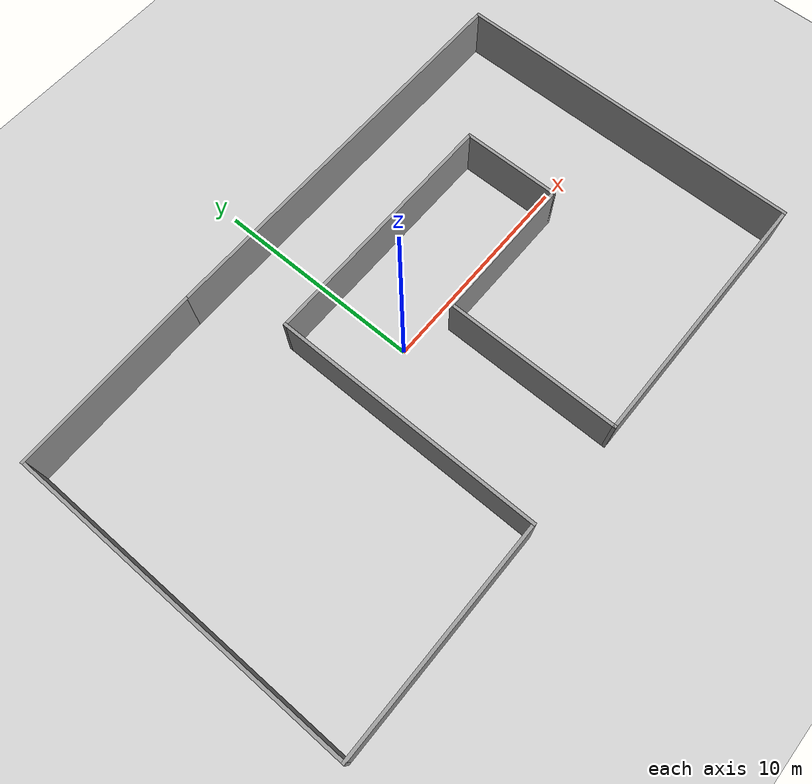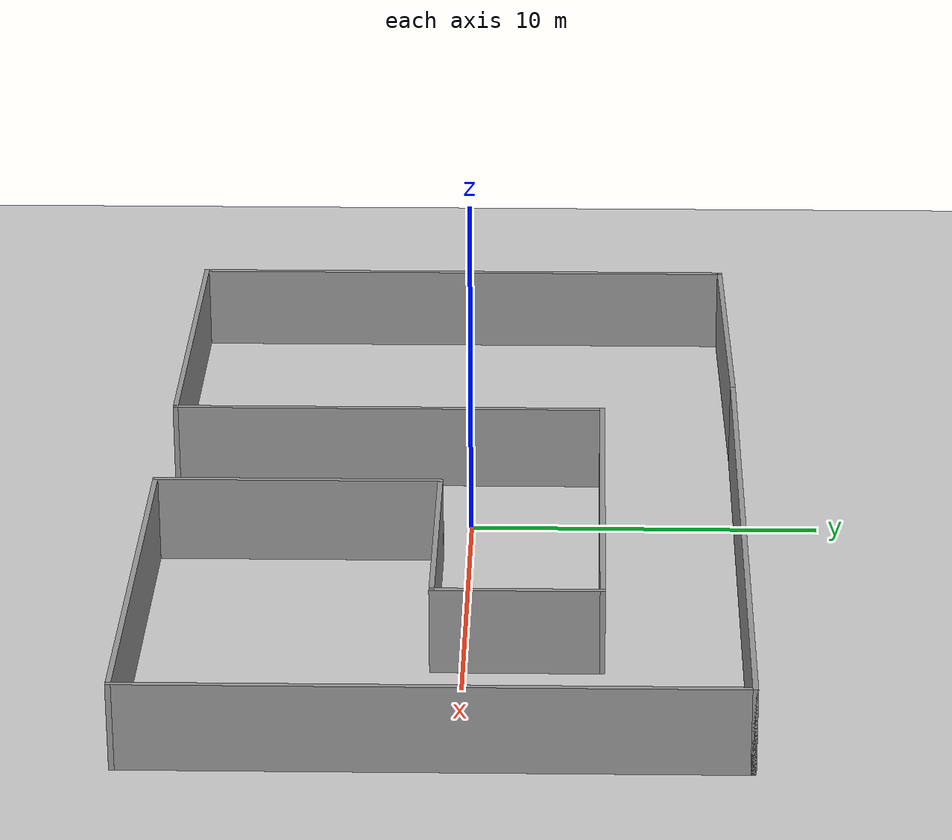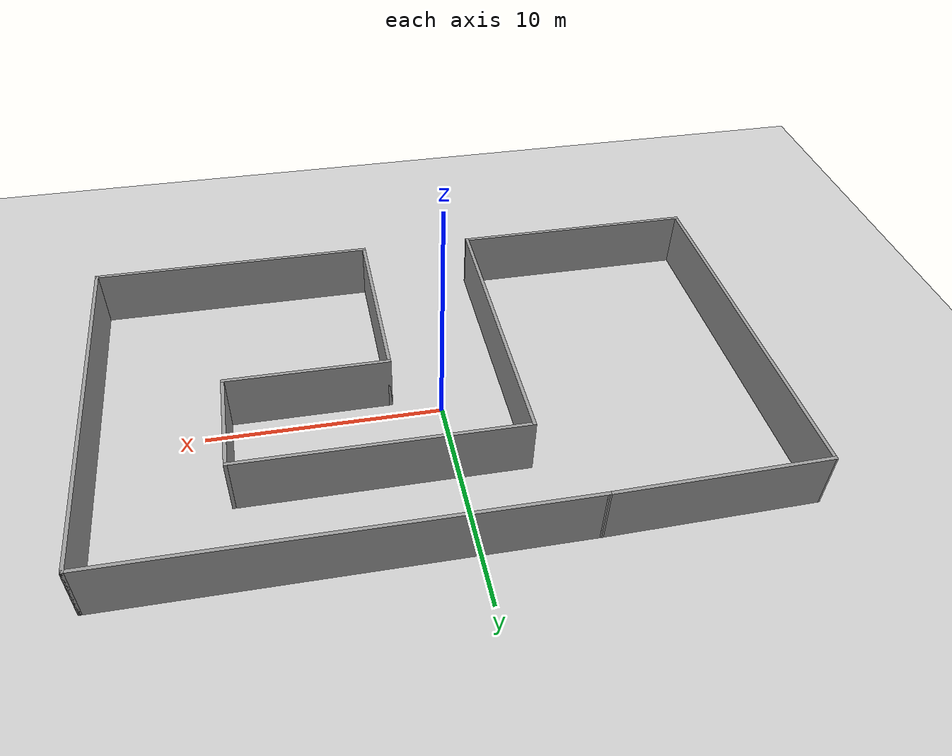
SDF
<sdf version="1.6">
 <world name="default">
  <light name="sun" type="directional">
   <pose>0 0 10 0 -0 0</pose>
   <diffuse>0.8 0.8 0.8 1</diffuse>
   <specular>0.2 0.2 0.2 1</specular>
   <attenuation>
    <range>1000</range>
    <constant>0.9</constant>
    <linear>0.01</linear>
    <quadratic>0.001</quadratic>
   </attenuation>
   <direction>-0.5 0.1 -0.9</direction>
  </light>
  <model name="ground_plane">
   <static>1</static>
   <link name="link">
    <collision name="collision">
     <geometry><plane><normal>0 0 1</normal><size>100 100</size></plane></geometry>
     <surface>
      <contact><collide_bitmask>65535</collide_bitmask></contact>
      <friction><ode><mu>100</mu><mu2>50</mu2></ode></friction>
     </surface>
    </collision>
    <visual name="visual">
     <cast_shadows>0</cast_shadows>
     <geometry><plane><normal>0 0 1</normal><size>100 100</size></plane></geometry>
     <material>
      <script><uri>file://media/materials/scripts/gazebo.material</uri><name>Gazebo/Grey</name></script>
     </material>
    </visual>
   </link>
  </model>
  <gravity>0 0 -9.8</gravity>
  <magnetic_field>6e-06 2.3e-05 -4.2e-05</magnetic_field>
  <atmosphere type="adiabatic"/>
  <physics name="default_physics" default="0" type="ode">
   <max_step_size>0.001</max_step_size>
   <real_time_factor>1</real_time_factor>
   <real_time_update_rate>1000</real_time_update_rate>
  </physics>
  <scene><ambient>0.4 0.4 0.4 1</ambient><background>0.7 0.7 0.7 1</background><shadows>1</shadows></scene>
  <audio><device>default</device></audio>
  <spherical_coordinates>
   <surface_model>EARTH_WGS84</surface_model>
   <latitude_deg>0</latitude_deg>
   <longitude_deg>0</longitude_deg>
   <elevation>0</elevation>
   <heading_deg>0</heading_deg>
  </spherical_coordinates>
  <model name="closedRoom">
   <pose>0.459277 -0.628841 0 0 -0 0</pose>
   <link name="Wall_10">
    <collision name="Wall_10_Collision">
     <geometry><box><size>4.75 0.15 2.5</size></box></geometry>
     <pose>0 0 1.25 0 -0 0</pose>
    </collision>
    <visual name="Wall_10_Visual">
     <pose>0 0 1.25 0 -0 0</pose>
     <geometry><box><size>4.75 0.15 2.5</size></box></geometry>
     <material>
      <script><uri>file://media/materials/scripts/gazebo.material</uri><name>Gazebo/Grey</name></script>
      <ambient>1 1 1 1</ambient>
     </material>
     <meta><layer>0</layer></meta>
    </visual>
    <pose>8.47563 2.09937 0 0 -0 1.5708</pose>
   </link>
   <link name="Wall_11">
    <collision name="Wall_11_Collision">
     <geometry><box><size>12 0.15 2.5</size></box></geometry>
     <pose>0 0 1.25 0 -0 0</pose>
    </collision>
    <visual name="Wall_11_Visual">
     <pose>0 0 1.25 0 -0 0</pose>
     <geometry><box><size>12 0.15 2.5</size></box></geometry>
     <material>
      <script><uri>file://media/materials/scripts/gazebo.material</uri><name>Gazebo/Grey</name></script>
      <ambient>1 1 1 1</ambient>
     </material>
     <meta><layer>0</layer></meta>
    </visual>
    <pose>2.55063 4.39937 0 0 -0 3.14159</pose>
   </link>
   <link name="Wall_12">
    <collision name="Wall_12_Collision">
     <geometry><box><size>12.75 0.15 2.5</size></box></geometry>
     <pose>0 0 1.25 0 -0 0</pose>
    </collision>
    <visual name="Wall_12_Visual">
     <pose>0 0 1.25 0 -0 0</pose>
     <geometry><box><size>12.75 0.15 2.5</size></box></geometry>
     <material>
      <script><uri>file://media/materials/scripts/gazebo.material</uri><name>Gazebo/Grey</name></script>
      <ambient>1 1 1 1</ambient>
     </material>
     <meta><layer>0</layer></meta>
    </visual>
    <pose>-3.37437 -1.90063 0 0 -0 -1.5708</pose>
   </link>
   <link name="Wall_13">
    <collision name="Wall_13_Collision">
     <geometry><box><size>10.75 0.15 2.5</size></box></geometry>
     <pose>0 0 1.25 0 -0 0</pose>
    </collision>
    <visual name="Wall_13_Visual">
     <pose>0 0 1.25 0 -0 0</pose>
     <geometry><box><size>10.75 0.15 2.5</size></box></geometry>
     <material>
      <script><uri>file://media/materials/scripts/gazebo.material</uri><name>Gazebo/Grey</name></script>
      <ambient>1 1 1 1</ambient>
     </material>
     <meta><layer>0</layer></meta>
    </visual>
    <pose>-8.67437 -8.20063 0 0 -0 3.14159</pose>
   </link>
   <link name="Wall_14">
    <collision name="Wall_14_Collision">
     <geometry><box><size>16.5 0.15 2.5</size></box></geometry>
     <pose>0 0 1.25 0 -0 0</pose>
    </collision>
    <visual name="Wall_14_Visual">
     <pose>0 0 1.25 0 -0 0</pose>
     <geometry><box><size>16.5 0.15 2.5</size></box></geometry>
     <material>
      <script><uri>file://media/materials/scripts/gazebo.material</uri><name>Gazebo/Grey</name></script>
      <ambient>1 1 1 1</ambient>
     </material>
     <meta><layer>0</layer></meta>
    </visual>
    <pose>-13.9744 -0.02563 0 0 -0 1.5708</pose>
   </link>
   <link name="Wall_16">
    <collision name="Wall_16_Collision">
     <geometry><box><size>9.00127 0.15 2.5</size></box></geometry>
     <pose>0 0 1.25 0 -0 0</pose>
    </collision>
    <visual name="Wall_16_Visual">
     <pose>0 0 1.25 0 -0 0</pose>
     <geometry><box><size>9.00127 0.15 2.5</size></box></geometry>
     <material>
      <script><uri>file://media/materials/scripts/gazebo.material</uri><name>Gazebo/Grey</name></script>
      <ambient>1 1 1 1</ambient>
     </material>
     <meta><layer>0</layer></meta>
    </visual>
    <pose>-9.54937 8.22437 0 0 -0 -3.12465</pose>
   </link>
   <link name="Wall_5">
    <collision name="Wall_5_Collision">
     <geometry><box><size>19.25 0.15 2.5</size></box></geometry>
     <pose>0 0 1.25 0 -0 0</pose>
    </collision>
    <visual name="Wall_5_Visual">
     <pose>0 0 1.25 0 -0 0</pose>
     <geometry><box><size>19.25 0.15 2.5</size></box></geometry>
     <material>
      <script><uri>file://media/materials/scripts/gazebo.material</uri><name>Gazebo/Grey</name></script>
      <ambient>1 1 1 1</ambient>
     </material>
     <meta><layer>0</layer></meta>
    </visual>
    <pose>4.42563 8.29937 0 0 -0 0</pose>
   </link>
   <link name="Wall_6">
    <collision name="Wall_6_Collision">
     <geometry><box><size>16.75 0.15 2.5</size></box></geometry>
     <pose>0 0 1.25 0 -0 0</pose>
    </collision>
    <visual name="Wall_6_Visual">
     <pose>0 0 1.25 0 -0 0</pose>
     <geometry><box><size>16.75 0.15 2.5</size></box></geometry>
     <material>
      <script><uri>file://media/materials/scripts/gazebo.material</uri><name>Gazebo/Grey</name></script>
      <ambient>1 1 1 1</ambient>
     </material>
     <meta><layer>0</layer></meta>
    </visual>
    <pose>13.9756 -0.00063 0 0 -0 -1.5708</pose>
   </link>
   <link name="Wall_7">
    <collision name="Wall_7_Collision">
     <geometry><box><size>12.5 0.15 2.5</size></box></geometry>
     <pose>0 0 1.25 0 -0 0</pose>
    </collision>
    <visual name="Wall_7_Visual">
     <pose>0 0 1.25 0 -0 0</pose>
     <geometry><box><size>12.5 0.15 2.5</size></box></geometry>
     <material>
      <script><uri>file://media/materials/scripts/gazebo.material</uri><name>Gazebo/Grey</name></script>
      <ambient>1 1 1 1</ambient>
     </material>
     <meta><layer>0</layer></meta>
    </visual>
    <pose>7.80063 -8.30063 0 0 -0 3.14159</pose>
   </link>
   <link name="Wall_8">
    <collision name="Wall_8_Collision">
     <geometry><box><size>8.25 0.15 2.5</size></box></geometry>
     <pose>0 0 1.25 0 -0 0</pose>
    </collision>
    <visual name="Wall_8_Visual">
     <pose>0 0 1.25 0 -0 0</pose>
     <geometry><box><size>8.25 0.15 2.5</size></box></geometry>
     <material>
      <script><uri>file://media/materials/scripts/gazebo.material</uri><name>Gazebo/Grey</name></script>
      <ambient>1 1 1 1</ambient>
     </material>
     <meta><layer>0</layer></meta>
    </visual>
    <pose>1.62563 -4.25063 0 0 -0 1.5708</pose>
   </link>
   <link name="Wall_9">
    <collision name="Wall_9_Collision">
     <geometry><box><size>7 0.15 2.5</size></box></geometry>
     <pose>0 0 1.25 0 -0 0</pose>
    </collision>
    <visual name="Wall_9_Visual">
     <pose>0 0 1.25 0 -0 0</pose>
     <geometry><box><size>7 0.15 2.5</size></box></geometry>
     <material>
      <script><uri>file://media/materials/scripts/gazebo.material</uri><name>Gazebo/Grey</name></script>
      <ambient>1 1 1 1</ambient>
     </material>
     <meta><layer>0</layer></meta>
    </visual>
    <pose>5.05063 -0.20063 0 0 -0 0</pose>
   </link>
   <static>1</static>
  </model>
 </world>
</sdf>
